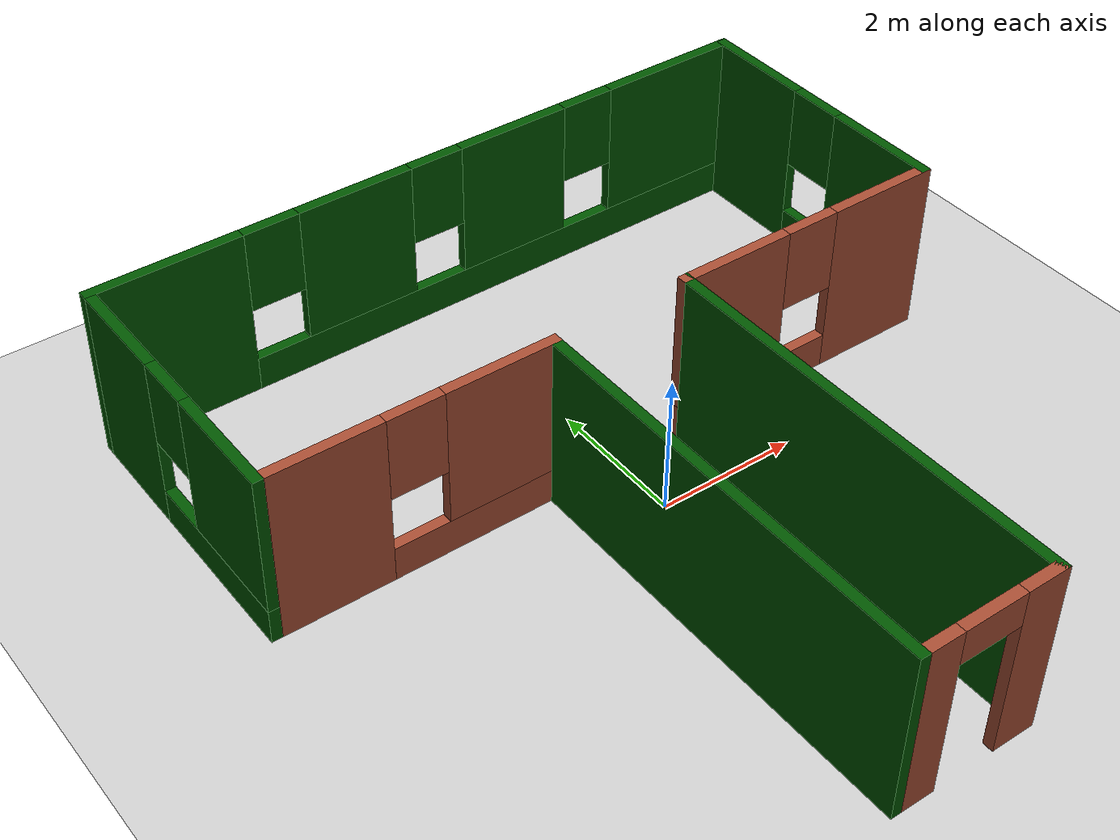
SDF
<sdf version="1.6">
 <world name="default">
  <model name="ground_plane">
   <static>1</static>
   <link name="link">
    <collision name="collision">
     <geometry><plane><normal>0 0 1</normal><size>100 100</size></plane></geometry>
     <surface>
      <contact><collide_bitmask>65535</collide_bitmask></contact>
      <friction><ode><mu>100</mu><mu2>50</mu2></ode></friction>
     </surface>
    </collision>
    <visual name="visual">
     <cast_shadows>0</cast_shadows>
     <geometry><plane><normal>0 0 1</normal><size>100 100</size></plane></geometry>
     <material>
      <script><uri>file://media/materials/scripts/gazebo.material</uri><name>Gazebo/Grey</name></script>
     </material>
    </visual>
   </link>
  </model>
  <model name="Big_T_Building">
   <link name="Wall_10">
    <pose>5 3 0 0 0 -1.5708</pose>
    <visual name="Wall_10_Visual_0">
     <pose>-1.2375 0 1.25 0 -0 0</pose>
     <geometry><box><size>1.675 0.15 2.5</size></box></geometry>
     <material>
      <script><uri>file://media/materials/scripts/gazebo.material</uri><name>Gazebo/Grey</name></script>
      <ambient>0 0.333333 0 1</ambient>
     </material>
     <meta><layer>0</layer></meta>
    </visual>
    <collision name="Wall_10_Collision_0">
     <geometry><box><size>1.675 0.15 2.5</size></box></geometry>
     <pose>-1.2375 0 1.25 0 -0 0</pose>
    </collision>
    <visual name="Wall_10_Visual_1">
     <pose>0.8375 0 0.25 0 -0 0</pose>
     <geometry><box><size>2.475 0.15 0.5</size></box></geometry>
     <material>
      <script><uri>file://media/materials/scripts/gazebo.material</uri><name>Gazebo/Grey</name></script>
      <ambient>0 0.333333 0 1</ambient>
     </material>
     <meta><layer>0</layer></meta>
    </visual>
    <collision name="Wall_10_Collision_1">
     <geometry><box><size>2.475 0.15 0.5</size></box></geometry>
     <pose>0.8375 0 0.25 0 -0 0</pose>
    </collision>
    <visual name="Wall_10_Visual_2">
     <pose>1.2375 0 1.5 0 -0 0</pose>
     <geometry><box><size>1.675 0.15 2</size></box></geometry>
     <material>
      <script><uri>file://media/materials/scripts/gazebo.material</uri><name>Gazebo/Grey</name></script>
      <ambient>0 0.333333 0 1</ambient>
     </material>
     <meta><layer>0</layer></meta>
    </visual>
    <collision name="Wall_10_Collision_2">
     <geometry><box><size>1.675 0.15 2</size></box></geometry>
     <pose>1.2375 0 1.5 0 -0 0</pose>
    </collision>
    <visual name="Wall_10_Visual_3">
     <pose>0 0 1.9 0 -0 0</pose>
     <geometry><box><size>0.8 0.15 1.2</size></box></geometry>
     <material>
      <script><uri>file://media/materials/scripts/gazebo.material</uri><name>Gazebo/Grey</name></script>
      <ambient>0 0.333333 0 1</ambient>
     </material>
     <meta><layer>0</layer></meta>
    </visual>
    <collision name="Wall_10_Collision_3">
     <geometry><box><size>0.8 0.15 1.2</size></box></geometry>
     <pose>0 0 1.9 0 -0 0</pose>
    </collision>
   </link>
   <link name="Wall_12">
    <pose>-5 3 0 0 0 -1.5708</pose>
    <visual name="Wall_12_Visual_0">
     <pose>-1.2375 0 1.25 0 -0 0</pose>
     <geometry><box><size>1.675 0.15 2.5</size></box></geometry>
     <material>
      <script><uri>file://media/materials/scripts/gazebo.material</uri><name>Gazebo/Grey</name></script>
      <ambient>0 0.333333 0 1</ambient>
     </material>
     <meta><layer>0</layer></meta>
    </visual>
    <collision name="Wall_12_Collision_0">
     <geometry><box><size>1.675 0.15 2.5</size></box></geometry>
     <pose>-1.2375 0 1.25 0 -0 0</pose>
    </collision>
    <visual name="Wall_12_Visual_1">
     <pose>0.8375 0 0.25 0 -0 0</pose>
     <geometry><box><size>2.475 0.15 0.5</size></box></geometry>
     <material>
      <script><uri>file://media/materials/scripts/gazebo.material</uri><name>Gazebo/Grey</name></script>
      <ambient>0 0.333333 0 1</ambient>
     </material>
     <meta><layer>0</layer></meta>
    </visual>
    <collision name="Wall_12_Collision_1">
     <geometry><box><size>2.475 0.15 0.5</size></box></geometry>
     <pose>0.8375 0 0.25 0 -0 0</pose>
    </collision>
    <visual name="Wall_12_Visual_2">
     <pose>1.2375 0 1.5 0 -0 0</pose>
     <geometry><box><size>1.675 0.15 2</size></box></geometry>
     <material>
      <script><uri>file://media/materials/scripts/gazebo.material</uri><name>Gazebo/Grey</name></script>
      <ambient>0 0.333333 0 1</ambient>
     </material>
     <meta><layer>0</layer></meta>
    </visual>
    <collision name="Wall_12_Collision_2">
     <geometry><box><size>1.675 0.15 2</size></box></geometry>
     <pose>1.2375 0 1.5 0 -0 0</pose>
    </collision>
    <visual name="Wall_12_Visual_3">
     <pose>0 0 1.9 0 -0 0</pose>
     <geometry><box><size>0.8 0.15 1.2</size></box></geometry>
     <material>
      <script><uri>file://media/materials/scripts/gazebo.material</uri><name>Gazebo/Grey</name></script>
      <ambient>0 0.333333 0 1</ambient>
     </material>
     <meta><layer>0</layer></meta>
    </visual>
    <collision name="Wall_12_Collision_3">
     <geometry><box><size>0.8 0.15 1.2</size></box></geometry>
     <pose>0 0 1.9 0 -0 0</pose>
    </collision>
   </link>
   <link name="Wall_25">
    <pose>-3 1 0 0 -0 0</pose>
    <visual name="Wall_25_Visual_0">
     <pose>-1.22162 0 1.25 0 -0 0</pose>
     <geometry><box><size>1.70676 0.15 2.5</size></box></geometry>
     <material>
      <script><uri>file://media/materials/scripts/gazebo.material</uri><name>Gazebo/Bricks</name></script>
      <ambient>0 0.333333 0 1</ambient>
     </material>
     <meta><layer>0</layer></meta>
    </visual>
    <collision name="Wall_25_Collision_0">
     <geometry><box><size>1.70676 0.15 2.5</size></box></geometry>
     <pose>-1.22162 0 1.25 0 -0 0</pose>
    </collision>
    <visual name="Wall_25_Visual_1">
     <pose>0.853379 0 0.25 0 -0 0</pose>
     <geometry><box><size>2.44324 0.15 0.5</size></box></geometry>
     <material>
      <script><uri>file://media/materials/scripts/gazebo.material</uri><name>Gazebo/Bricks</name></script>
      <ambient>0 0.333333 0 1</ambient>
     </material>
     <meta><layer>0</layer></meta>
    </visual>
    <collision name="Wall_25_Collision_1">
     <geometry><box><size>2.44324 0.15 0.5</size></box></geometry>
     <pose>0.853379 0 0.25 0 -0 0</pose>
    </collision>
    <visual name="Wall_25_Visual_2">
     <pose>1.25338 0 1.5 0 -0 0</pose>
     <geometry><box><size>1.64324 0.15 2</size></box></geometry>
     <material>
      <script><uri>file://media/materials/scripts/gazebo.material</uri><name>Gazebo/Bricks</name></script>
      <ambient>0 0.333333 0 1</ambient>
     </material>
     <meta><layer>0</layer></meta>
    </visual>
    <collision name="Wall_25_Collision_2">
     <geometry><box><size>1.64324 0.15 2</size></box></geometry>
     <pose>1.25338 0 1.5 0 -0 0</pose>
    </collision>
    <visual name="Wall_25_Visual_3">
     <pose>0.031757 0 1.9 0 -0 0</pose>
     <geometry><box><size>0.8 0.15 1.2</size></box></geometry>
     <material>
      <script><uri>file://media/materials/scripts/gazebo.material</uri><name>Gazebo/Bricks</name></script>
      <ambient>0 0.333333 0 1</ambient>
     </material>
     <meta><layer>0</layer></meta>
    </visual>
    <collision name="Wall_25_Collision_3">
     <geometry><box><size>0.8 0.15 1.2</size></box></geometry>
     <pose>0.031757 0 1.9 0 -0 0</pose>
    </collision>
   </link>
   <link name="Wall_27">
    <pose>3 1 0 0 -0 3.14159</pose>
    <visual name="Wall_27_Visual_0">
     <pose>-1.24879 0 1.25 0 -0 0</pose>
     <geometry><box><size>1.65241 0.15 2.5</size></box></geometry>
     <material>
      <script><uri>file://media/materials/scripts/gazebo.material</uri><name>Gazebo/Bricks</name></script>
      <ambient>0 0.333333 0 1</ambient>
     </material>
     <meta><layer>0</layer></meta>
    </visual>
    <collision name="Wall_27_Collision_0">
     <geometry><box><size>1.65241 0.15 2.5</size></box></geometry>
     <pose>-1.24879 0 1.25 0 -0 0</pose>
    </collision>
    <visual name="Wall_27_Visual_1">
     <pose>0.826208 0 0.25 0 -0 0</pose>
     <geometry><box><size>2.49758 0.15 0.5</size></box></geometry>
     <material>
      <script><uri>file://media/materials/scripts/gazebo.material</uri><name>Gazebo/Bricks</name></script>
      <ambient>0 0.333333 0 1</ambient>
     </material>
     <meta><layer>0</layer></meta>
    </visual>
    <collision name="Wall_27_Collision_1">
     <geometry><box><size>2.49758 0.15 0.5</size></box></geometry>
     <pose>0.826208 0 0.25 0 -0 0</pose>
    </collision>
    <visual name="Wall_27_Visual_2">
     <pose>1.22621 0 1.5 0 -0 0</pose>
     <geometry><box><size>1.69758 0.15 2</size></box></geometry>
     <material>
      <script><uri>file://media/materials/scripts/gazebo.material</uri><name>Gazebo/Bricks</name></script>
      <ambient>0 0.333333 0 1</ambient>
     </material>
     <meta><layer>0</layer></meta>
    </visual>
    <collision name="Wall_27_Collision_2">
     <geometry><box><size>1.69758 0.15 2</size></box></geometry>
     <pose>1.22621 0 1.5 0 -0 0</pose>
    </collision>
    <visual name="Wall_27_Visual_3">
     <pose>-0.022585 0 1.9 0 -0 0</pose>
     <geometry><box><size>0.8 0.15 1.2</size></box></geometry>
     <material>
      <script><uri>file://media/materials/scripts/gazebo.material</uri><name>Gazebo/Bricks</name></script>
      <ambient>0 0.333333 0 1</ambient>
     </material>
     <meta><layer>0</layer></meta>
    </visual>
    <collision name="Wall_27_Collision_3">
     <geometry><box><size>0.8 0.15 1.2</size></box></geometry>
     <pose>-0.022585 0 1.9 0 -0 0</pose>
    </collision>
   </link>
   <link name="Wall_29">
    <collision name="Wall_29_Collision">
     <geometry><box><size>6.15 0.15 2.5</size></box></geometry>
     <pose>0 0 1.25 0 -0 0</pose>
    </collision>
    <visual name="Wall_29_Visual">
     <pose>0 0 1.25 0 -0 0</pose>
     <geometry><box><size>6.15 0.15 2.5</size></box></geometry>
     <material>
      <script><uri>file://media/materials/scripts/gazebo.material</uri><name>Gazebo/Grey</name></script>
      <ambient>0 0.333333 0 1</ambient>
     </material>
     <meta><layer>0</layer></meta>
    </visual>
    <pose>-1 -2 0 0 0 -1.5708</pose>
   </link>
   <link name="Wall_31">
    <collision name="Wall_31_Collision">
     <geometry><box><size>6.15 0.15 2.5</size></box></geometry>
     <pose>0 0 1.25 0 -0 0</pose>
    </collision>
    <visual name="Wall_31_Visual">
     <pose>0 0 1.25 0 -0 0</pose>
     <geometry><box><size>6.15 0.15 2.5</size></box></geometry>
     <material>
      <script><uri>file://media/materials/scripts/gazebo.material</uri><name>Gazebo/Grey</name></script>
      <ambient>0 0.333333 0 1</ambient>
     </material>
     <meta><layer>0</layer></meta>
    </visual>
    <pose>1 -2 0 0 0 -1.5708</pose>
   </link>
   <link name="Wall_32">
    <pose>0 -5 0 0 -0 3.14159</pose>
    <visual name="Wall_32_Visual_0">
     <pose>-0.763969 0 1.25 0 -0 0</pose>
     <geometry><box><size>0.622062 0.15 2.5</size></box></geometry>
     <material>
      <script><uri>file://media/materials/scripts/gazebo.material</uri><name>Gazebo/Bricks</name></script>
      <ambient>0 0.333333 0 1</ambient>
     </material>
     <meta><layer>0</layer></meta>
    </visual>
    <collision name="Wall_32_Collision_0">
     <geometry><box><size>0.622062 0.15 2.5</size></box></geometry>
     <pose>-0.763969 0 1.25 0 -0 0</pose>
    </collision>
    <visual name="Wall_32_Visual_1">
     <pose>0.761031 0 1.25 0 -0 0</pose>
     <geometry><box><size>0.627938 0.15 2.5</size></box></geometry>
     <material>
      <script><uri>file://media/materials/scripts/gazebo.material</uri><name>Gazebo/Bricks</name></script>
      <ambient>0 0.333333 0 1</ambient>
     </material>
     <meta><layer>0</layer></meta>
    </visual>
    <collision name="Wall_32_Collision_1">
     <geometry><box><size>0.627938 0.15 2.5</size></box></geometry>
     <pose>0.761031 0 1.25 0 -0 0</pose>
    </collision>
    <visual name="Wall_32_Visual_2">
     <pose>-0.002938 0 2.25 0 -0 0</pose>
     <geometry><box><size>0.9 0.15 0.5</size></box></geometry>
     <material>
      <script><uri>file://media/materials/scripts/gazebo.material</uri><name>Gazebo/Bricks</name></script>
      <ambient>0 0.333333 0 1</ambient>
     </material>
     <meta><layer>0</layer></meta>
    </visual>
    <collision name="Wall_32_Collision_2">
     <geometry><box><size>0.9 0.15 0.5</size></box></geometry>
     <pose>-0.002938 0 2.25 0 -0 0</pose>
    </collision>
   </link>
   <link name="Wall_9">
    <pose>0 5 0 0 -0 0</pose>
    <visual name="Wall_9_Visual_0">
     <pose>-3.9875 0 1.25 0 -0 0</pose>
     <geometry><box><size>2.175 0.15 2.5</size></box></geometry>
     <material>
      <script><uri>file://media/materials/scripts/gazebo.material</uri><name>Gazebo/Grey</name></script>
      <ambient>0 0.333333 0 1</ambient>
     </material>
     <meta><layer>0</layer></meta>
    </visual>
    <collision name="Wall_9_Collision_0">
     <geometry><box><size>2.175 0.15 2.5</size></box></geometry>
     <pose>-3.9875 0 1.25 0 -0 0</pose>
    </collision>
    <visual name="Wall_9_Visual_1">
     <pose>1.0875 0 0.25 0 -0 0</pose>
     <geometry><box><size>7.975 0.15 0.5</size></box></geometry>
     <material>
      <script><uri>file://media/materials/scripts/gazebo.material</uri><name>Gazebo/Grey</name></script>
      <ambient>0 0.333333 0 1</ambient>
     </material>
     <meta><layer>0</layer></meta>
    </visual>
    <collision name="Wall_9_Collision_1">
     <geometry><box><size>7.975 0.15 0.5</size></box></geometry>
     <pose>1.0875 0 0.25 0 -0 0</pose>
    </collision>
    <visual name="Wall_9_Visual_2">
     <pose>-1.25 0 1.5 0 -0 0</pose>
     <geometry><box><size>1.7 0.15 2</size></box></geometry>
     <material>
      <script><uri>file://media/materials/scripts/gazebo.material</uri><name>Gazebo/Grey</name></script>
      <ambient>0 0.333333 0 1</ambient>
     </material>
     <meta><layer>0</layer></meta>
    </visual>
    <collision name="Wall_9_Collision_2">
     <geometry><box><size>1.7 0.15 2</size></box></geometry>
     <pose>-1.25 0 1.5 0 -0 0</pose>
    </collision>
    <visual name="Wall_9_Visual_3">
     <pose>1.25 0 1.5 0 -0 0</pose>
     <geometry><box><size>1.7 0.15 2</size></box></geometry>
     <material>
      <script><uri>file://media/materials/scripts/gazebo.material</uri><name>Gazebo/Grey</name></script>
      <ambient>0 0.333333 0 1</ambient>
     </material>
     <meta><layer>0</layer></meta>
    </visual>
    <collision name="Wall_9_Collision_3">
     <geometry><box><size>1.7 0.15 2</size></box></geometry>
     <pose>1.25 0 1.5 0 -0 0</pose>
    </collision>
    <visual name="Wall_9_Visual_4">
     <pose>3.9875 0 1.5 0 -0 0</pose>
     <geometry><box><size>2.175 0.15 2</size></box></geometry>
     <material>
      <script><uri>file://media/materials/scripts/gazebo.material</uri><name>Gazebo/Grey</name></script>
      <ambient>0 0.333333 0 1</ambient>
     </material>
     <meta><layer>0</layer></meta>
    </visual>
    <collision name="Wall_9_Collision_4">
     <geometry><box><size>2.175 0.15 2</size></box></geometry>
     <pose>3.9875 0 1.5 0 -0 0</pose>
    </collision>
    <visual name="Wall_9_Visual_5">
     <pose>-2.5 0 1.9 0 -0 0</pose>
     <geometry><box><size>0.8 0.15 1.2</size></box></geometry>
     <material>
      <script><uri>file://media/materials/scripts/gazebo.material</uri><name>Gazebo/Grey</name></script>
      <ambient>0 0.333333 0 1</ambient>
     </material>
     <meta><layer>0</layer></meta>
    </visual>
    <collision name="Wall_9_Collision_5">
     <geometry><box><size>0.8 0.15 1.2</size></box></geometry>
     <pose>-2.5 0 1.9 0 -0 0</pose>
    </collision>
    <visual name="Wall_9_Visual_6">
     <pose>-0 0 1.9 0 -0 0</pose>
     <geometry><box><size>0.8 0.15 1.2</size></box></geometry>
     <material>
      <script><uri>file://media/materials/scripts/gazebo.material</uri><name>Gazebo/Grey</name></script>
      <ambient>0 0.333333 0 1</ambient>
     </material>
     <meta><layer>0</layer></meta>
    </visual>
    <collision name="Wall_9_Collision_6">
     <geometry><box><size>0.8 0.15 1.2</size></box></geometry>
     <pose>-0 0 1.9 0 -0 0</pose>
    </collision>
    <visual name="Wall_9_Visual_7">
     <pose>2.5 0 1.9 0 -0 0</pose>
     <geometry><box><size>0.8 0.15 1.2</size></box></geometry>
     <material>
      <script><uri>file://media/materials/scripts/gazebo.material</uri><name>Gazebo/Grey</name></script>
      <ambient>0 0.333333 0 1</ambient>
     </material>
     <meta><layer>0</layer></meta>
    </visual>
    <collision name="Wall_9_Collision_7">
     <geometry><box><size>0.8 0.15 1.2</size></box></geometry>
     <pose>2.5 0 1.9 0 -0 0</pose>
    </collision>
   </link>
   <static>1</static>
  </model>
 </world>
</sdf>
